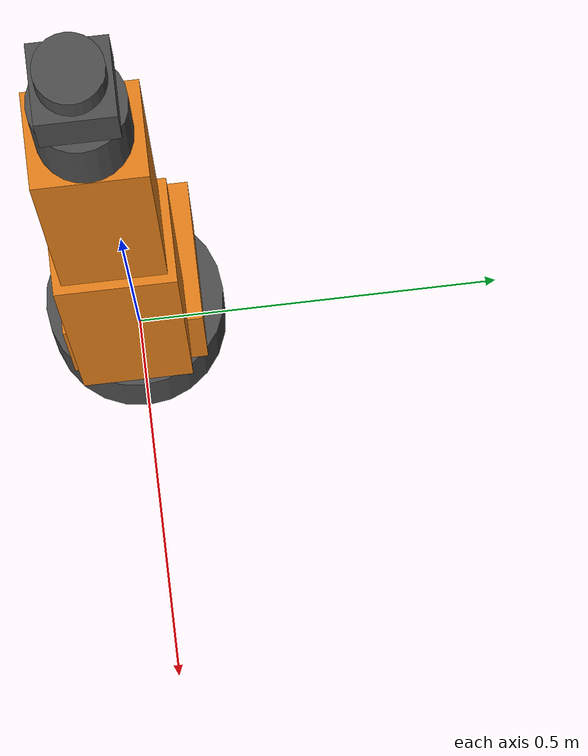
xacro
<?xml version="1.0"?>
<robot name="arm_standalone" xmlns:xacro="http://www.ros.org/wiki/xacro">

  <xacro:arg name="mesh_base_link" default=""/>
  <xacro:arg name="mesh_link1"     default=""/>
  <xacro:arg name="mesh_link2"     default=""/>
  <xacro:arg name="mesh_link3"     default=""/>
  <xacro:arg name="mesh_link4"     default=""/>
  <xacro:arg name="mesh_link5"     default=""/>
  <xacro:arg name="mesh_tool0"     default=""/>

  <xacro:include filename="$(find vika_description)/urdf/arm_6dof.xacro"/>
  <xacro:include filename="$(find vika_description)/urdf/vika.ros2_control.xacro"/>

  <link name="world"/>

  <xacro:arm_6dof prefix="arm_" parent="world"
                  mesh_base_link="$(arg mesh_base_link)"
                  mesh_link1="$(arg mesh_link1)"
                  mesh_link2="$(arg mesh_link2)"
                  mesh_link3="$(arg mesh_link3)"
                  mesh_link4="$(arg mesh_link4)"
                  mesh_link5="$(arg mesh_link5)"
                  mesh_tool0="$(arg mesh_tool0)">
    <origin xyz="0 0 0" rpy="0 0 0"/>
  </xacro:arm_6dof>

  <xacro:vika_ros2_control prefix="" ns="" tool="none"/>

  <gazebo>
    <plugin filename="gz_ros2_control-system" name="gz_ros2_control::GazeboSimROS2ControlPlugin">
      <parameters>$(find vika_control)/config/controllers_arm.yaml</parameters>
    </plugin>
  </gazebo>

</robot>

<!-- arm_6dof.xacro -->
<robot xmlns:xacro="http://www.ros.org/wiki/xacro">

  <xacro:macro name="arm_6dof" params="prefix parent
                                       mesh_base_link:='package://vika_description/meshes/arm/ROD-STL/base.stl'
                                       mesh_link1:='package://vika_description/meshes/arm/ROD-STL/link1.stl'
                                       mesh_link2:='package://vika_description/meshes/arm/ROD-STL/link2.stl'
                                       mesh_link3:='package://vika_description/meshes/arm/ROD-STL/link3.stl'
                                       mesh_link4:='package://vika_description/meshes/arm/ROD-STL/link4.stl'
                                       mesh_link5:='package://vika_description/meshes/arm/ROD-STL/link5.stl'
                                       mesh_tool0:='package://vika_description/meshes/arm/ROD-STL/link6.stl'
                                       *origin">

    <!-- Reusable swap macro: mesh if non-empty, else fallback primitive block. -->
    <xacro:macro name="geom_or_mesh" params="mesh_uri *fallback">
      <xacro:if value="${len(mesh_uri) &gt; 0}">
        <geometry><mesh filename="${mesh_uri}" scale="0.001 0.001 0.001"/></geometry>
      </xacro:if>
      <xacro:unless value="${len(mesh_uri) &gt; 0}">
        <xacro:insert_block name="fallback"/>
      </xacro:unless>
    </xacro:macro>

    <!-- Shoulder mount plate -->
    <joint name="${prefix}mount_joint" type="fixed">
      <xacro:insert_block name="origin"/>
      <parent link="${parent}"/>
      <child link="${prefix}base_link"/>
    </joint>

    <link name="${prefix}base_link">
      <visual>
        <origin xyz="0 0 0.075"/>
        <xacro:geom_or_mesh mesh_uri="${mesh_base_link}">
          <geometry><cylinder radius="0.12" length="0.15"/></geometry>
        </xacro:geom_or_mesh>
        <material name="arm_grey"><color rgba="0.3 0.3 0.3 1"/></material>
      </visual>
      <collision>
        <origin xyz="0 0 0.075"/>
        <xacro:geom_or_mesh mesh_uri="${mesh_base_link}">
          <geometry><cylinder radius="0.12" length="0.15"/></geometry>
        </xacro:geom_or_mesh>
      </collision>
      <inertial>
        <mass value="4.0"/>
        <inertia ixx="0.02" iyy="0.02" izz="0.03" ixy="0" ixz="0" iyz="0"/>
      </inertial>
    </link>

    <!-- J1: Base rotation -->
    <joint name="${prefix}j1" type="revolute">
      <parent link="${prefix}base_link"/>
      <child link="${prefix}link1"/>
      <origin xyz="0 0 0.15" rpy="0 0 0"/>
      <axis xyz="0 0 1"/>
      <limit lower="-3.23" upper="3.23" effort="80" velocity="3.14"/>
      <dynamics damping="0.5" friction="0.1"/>
    </joint>
    <link name="${prefix}link1">
      <visual>
        <origin xyz="0 0 0.125"/>
        <xacro:geom_or_mesh mesh_uri="${mesh_link1}">
          <geometry><box size="0.18 0.18 0.25"/></geometry>
        </xacro:geom_or_mesh>
        <material name="arm_orange"><color rgba="0.9 0.5 0.1 1"/></material>
      </visual>
      <collision>
        <origin xyz="0 0 0.125"/>
        <xacro:geom_or_mesh mesh_uri="${mesh_link1}">
          <geometry><box size="0.18 0.18 0.25"/></geometry>
        </xacro:geom_or_mesh>
      </collision>
      <inertial><mass value="6.0"/><inertia ixx="0.05" iyy="0.05" izz="0.03" ixy="0" ixz="0" iyz="0"/></inertial>
    </link>

    <!-- J2: Shoulder pitch -->
    <joint name="${prefix}j2" type="revolute">
      <parent link="${prefix}link1"/>
      <child link="${prefix}link2"/>
      <origin xyz="0.1 0 0.25" rpy="0 0 0"/>
      <axis xyz="0 1 0"/>
      <limit lower="-2.70" upper="0.61" effort="80" velocity="2.5"/>
      <dynamics damping="0.5" friction="0.1"/>
    </joint>
    <link name="${prefix}link2">
      <visual>
        <origin xyz="0 0 0.275"/>
        <xacro:geom_or_mesh mesh_uri="${mesh_link2}">
          <geometry><box size="0.12 0.14 0.55"/></geometry>
        </xacro:geom_or_mesh>
        <material name="arm_orange"/>
      </visual>
      <collision>
        <origin xyz="0 0 0.275"/>
        <xacro:geom_or_mesh mesh_uri="${mesh_link2}">
          <geometry><box size="0.12 0.14 0.55"/></geometry>
        </xacro:geom_or_mesh>
      </collision>
      <inertial><mass value="5.0"/><inertia ixx="0.14" iyy="0.14" izz="0.02" ixy="0" ixz="0" iyz="0"/></inertial>
    </link>

    <!-- J3: Elbow -->
    <joint name="${prefix}j3" type="revolute">
      <parent link="${prefix}link2"/>
      <child link="${prefix}link3"/>
      <origin xyz="0 0 0.55" rpy="0 0 0"/>
      <axis xyz="0 1 0"/>
      <limit lower="-2.27" upper="2.69" effort="60" velocity="2.8"/>
      <dynamics damping="0.5" friction="0.1"/>
    </joint>
    <link name="${prefix}link3">
      <visual>
        <origin xyz="0 0 0.225"/>
        <xacro:geom_or_mesh mesh_uri="${mesh_link3}">
          <geometry><box size="0.10 0.12 0.45"/></geometry>
        </xacro:geom_or_mesh>
        <material name="arm_orange"/>
      </visual>
      <collision>
        <origin xyz="0 0 0.225"/>
        <xacro:geom_or_mesh mesh_uri="${mesh_link3}">
          <geometry><box size="0.10 0.12 0.45"/></geometry>
        </xacro:geom_or_mesh>
      </collision>
      <inertial><mass value="3.5"/><inertia ixx="0.07" iyy="0.07" izz="0.01" ixy="0" ixz="0" iyz="0"/></inertial>
    </link>

    <!-- J4: Wrist roll -->
    <joint name="${prefix}j4" type="revolute">
      <parent link="${prefix}link3"/>
      <child link="${prefix}link4"/>
      <origin xyz="0 0 0.45" rpy="0 0 0"/>
      <axis xyz="0 0 1"/>
      <limit lower="-6.10" upper="6.10" effort="20" velocity="5.0"/>
      <dynamics damping="0.2" friction="0.05"/>
    </joint>
    <link name="${prefix}link4">
      <visual>
        <origin xyz="0 0 0.06"/>
        <xacro:geom_or_mesh mesh_uri="${mesh_link4}">
          <geometry><cylinder radius="0.05" length="0.12"/></geometry>
        </xacro:geom_or_mesh>
        <material name="arm_grey"/>
      </visual>
      <collision>
        <origin xyz="0 0 0.06"/>
        <xacro:geom_or_mesh mesh_uri="${mesh_link4}">
          <geometry><cylinder radius="0.05" length="0.12"/></geometry>
        </xacro:geom_or_mesh>
      </collision>
      <inertial><mass value="1.2"/><inertia ixx="0.002" iyy="0.002" izz="0.001" ixy="0" ixz="0" iyz="0"/></inertial>
    </link>

    <!-- J5: Wrist pitch -->
    <joint name="${prefix}j5" type="revolute">
      <parent link="${prefix}link4"/>
      <child link="${prefix}link5"/>
      <origin xyz="0 0 0.12" rpy="0 0 0"/>
      <axis xyz="0 1 0"/>
      <limit lower="-2.27" upper="2.27" effort="20" velocity="5.0"/>
      <dynamics damping="0.2" friction="0.05"/>
    </joint>
    <link name="${prefix}link5">
      <visual>
        <origin xyz="0 0 0.04"/>
        <xacro:geom_or_mesh mesh_uri="${mesh_link5}">
          <geometry><box size="0.08 0.08 0.08"/></geometry>
        </xacro:geom_or_mesh>
        <material name="arm_grey"/>
      </visual>
      <collision>
        <origin xyz="0 0 0.04"/>
        <xacro:geom_or_mesh mesh_uri="${mesh_link5}">
          <geometry><box size="0.08 0.08 0.08"/></geometry>
        </xacro:geom_or_mesh>
      </collision>
      <inertial><mass value="0.8"/><inertia ixx="0.001" iyy="0.001" izz="0.001" ixy="0" ixz="0" iyz="0"/></inertial>
    </link>

    <!-- J6: Tool rotation -->
    <joint name="${prefix}j6" type="revolute">
      <parent link="${prefix}link5"/>
      <child link="${prefix}tool0"/>
      <origin xyz="0 0 0.08" rpy="0 0 0"/>
      <axis xyz="0 0 1"/>
      <limit lower="-6.10" upper="6.10" effort="15" velocity="6.0"/>
      <dynamics damping="0.1" friction="0.02"/>
    </joint>
    <link name="${prefix}tool0">
      <visual>
        <origin xyz="0 0 0.02"/>
        <xacro:geom_or_mesh mesh_uri="${mesh_tool0}">
          <geometry><cylinder radius="0.035" length="0.04"/></geometry>
        </xacro:geom_or_mesh>
        <material name="arm_grey"/>
      </visual>
      <collision>
        <origin xyz="0 0 0.02"/>
        <xacro:geom_or_mesh mesh_uri="${mesh_tool0}">
          <geometry><cylinder radius="0.035" length="0.04"/></geometry>
        </xacro:geom_or_mesh>
      </collision>
      <inertial><mass value="0.3"/><inertia ixx="0.0002" iyy="0.0002" izz="0.0002" ixy="0" ixz="0" iyz="0"/></inertial>
    </link>

  </xacro:macro>

</robot>
